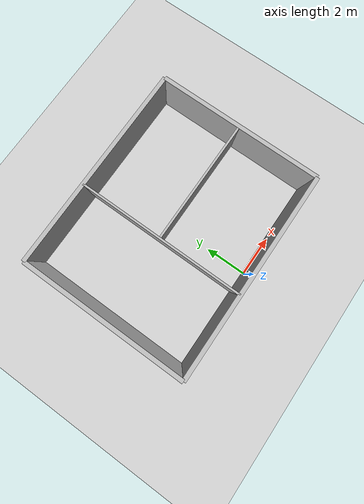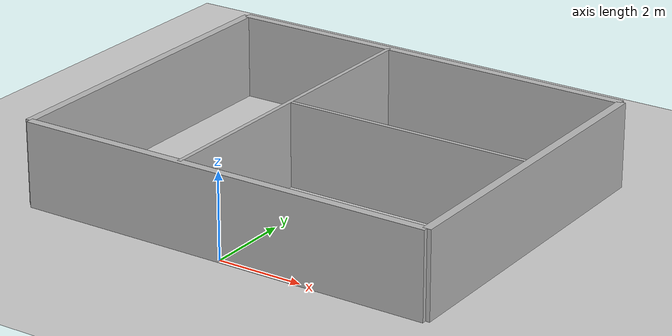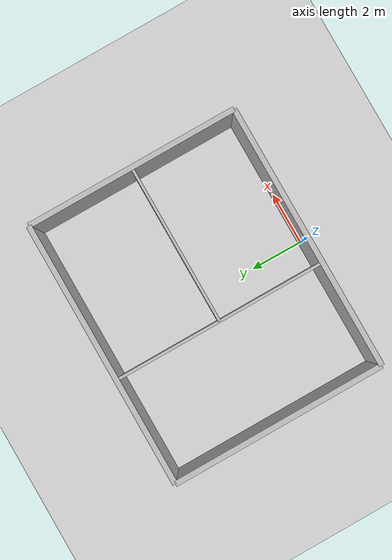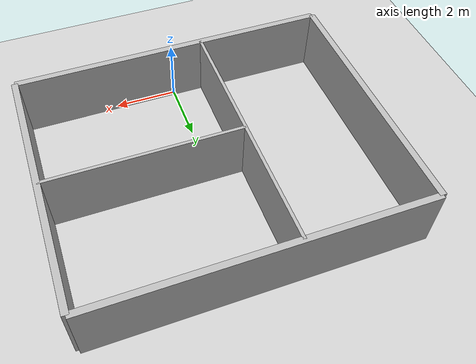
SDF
<?xml version="1.0" ?>
<sdf version="1.6">
  <world name="default">
    <!-- Işık ve Zemin -->
    <include>
      <uri>model://sun</uri>
    </include>
    <include>
      <uri>model://ground_plane</uri>
    </include>

    <!-- Evin Dış ve İç Duvarları -->
    <model name="house_walls">
      <static>true</static>
      <link name="link">

        <!-- DIŞ DUVARLAR -->
        <collision name="wall1">
          <pose>0 0 1 0 0 0</pose>
          <geometry><box><size>10 0.2 2</size></box></geometry>
        </collision>
        <visual name="wall1_v">
          <pose>0 0 1 0 0 0</pose>
          <geometry><box><size>10 0.2 2</size></box></geometry>
        </visual>

        <collision name="wall2">
          <pose>0 8 1 0 0 0</pose>
          <geometry><box><size>10 0.2 2</size></box></geometry>
        </collision>
        <visual name="wall2_v">
          <pose>0 8 1 0 0 0</pose>
          <geometry><box><size>10 0.2 2</size></box></geometry>
        </visual>

        <collision name="wall3">
          <pose>-5 4 1 0 0 1.57</pose>
          <geometry><box><size>8 0.2 2</size></box></geometry>
        </collision>
        <visual name="wall3_v">
          <pose>-5 4 1 0 0 1.57</pose>
          <geometry><box><size>8 0.2 2</size></box></geometry>
        </visual>

        <collision name="wall4">
          <pose>5 4 1 0 0 1.57</pose>
          <geometry><box><size>8 0.2 2</size></box></geometry>
        </collision>
        <visual name="wall4_v">
          <pose>5 4 1 0 0 1.57</pose>
          <geometry><box><size>8 0.2 2</size></box></geometry>
        </visual>

        <!-- İÇ DUVARLAR (2+1 Ayrımı) -->
        <collision name="inner_wall1">
          <pose>-1 4 1 0 0 1.57</pose>
          <geometry><box><size>8 0.1 2</size></box></geometry>
        </collision>
        <visual name="inner_wall1_v">
          <pose>-1 4 1 0 0 1.57</pose>
          <geometry><box><size>8 0.1 2</size></box></geometry>
        </visual>

        <collision name="inner_wall2">
          <pose>2 4 1 0 0 0</pose>
          <geometry><box><size>6 0.1 2</size></box></geometry>
        </collision>
        <visual name="inner_wall2_v">
          <pose>2 4 1 0 0 0</pose>
          <geometry><box><size>6 0.1 2</size></box></geometry>
        </visual>

      </link>
    </model>
  </world>
</sdf>
